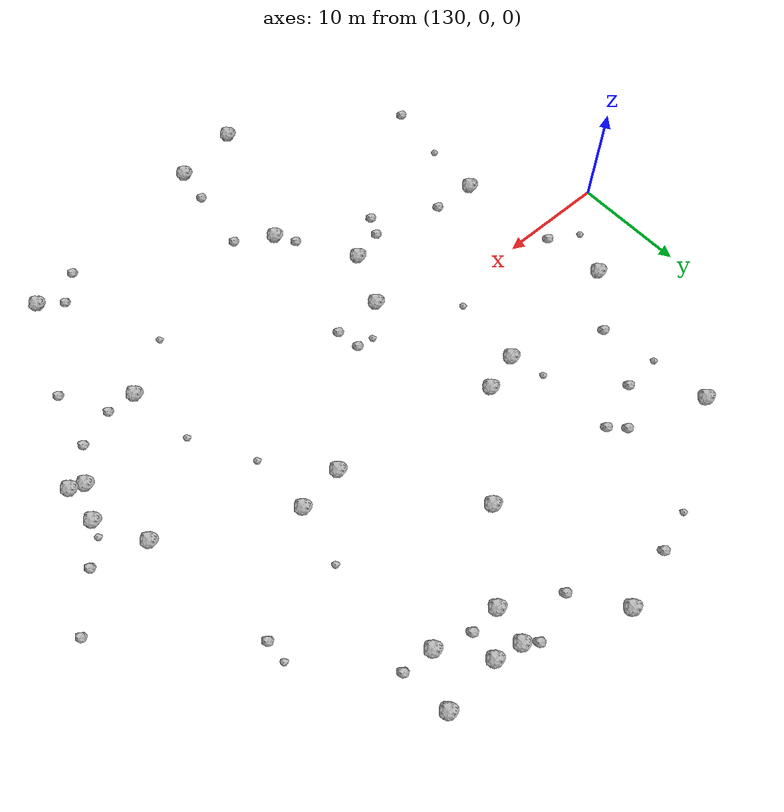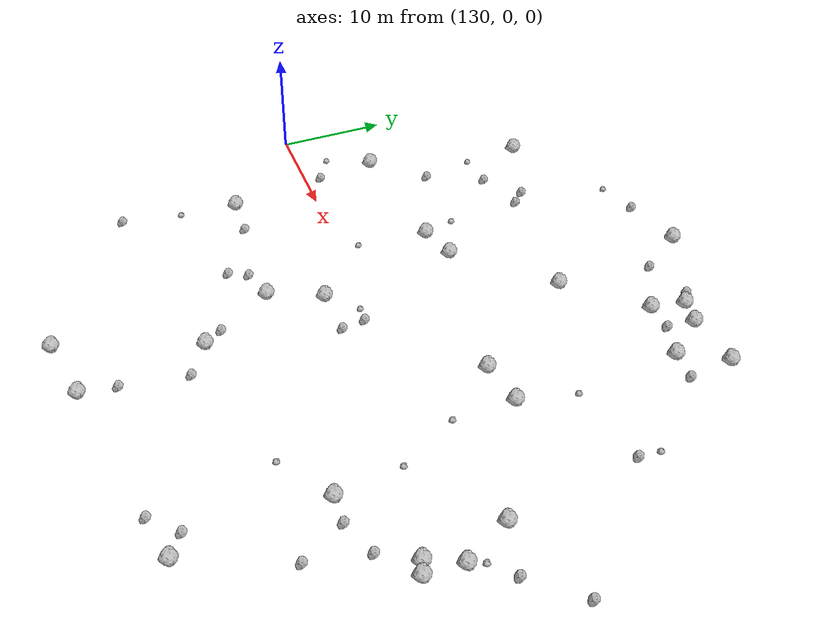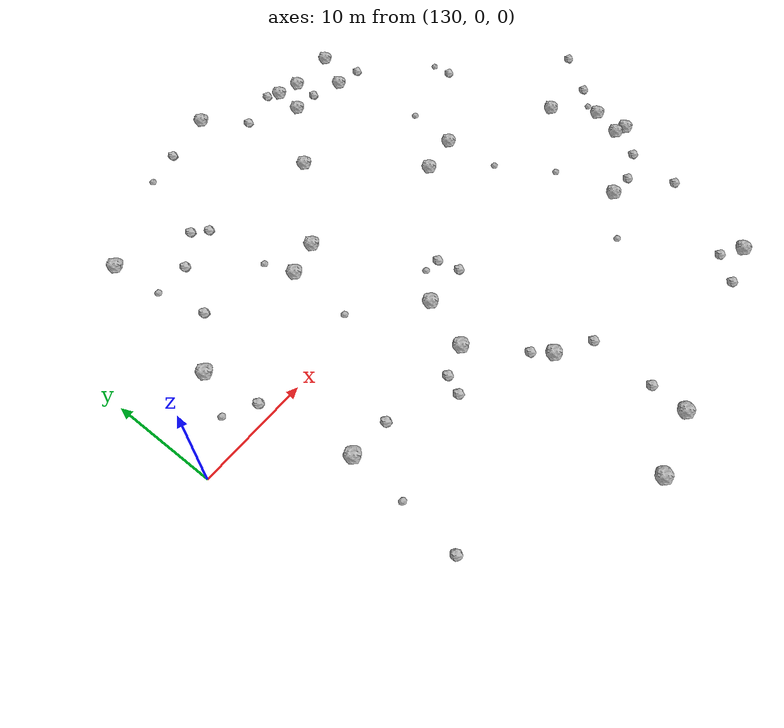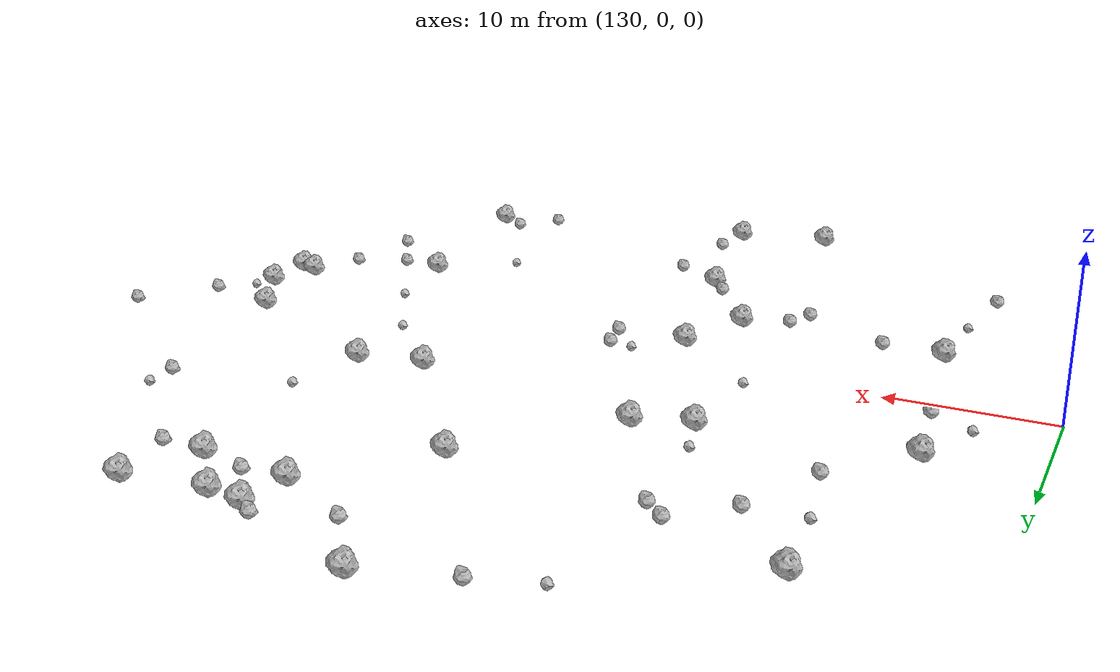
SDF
<sdf version="1.6">
 <world name="default">
  <include><uri>model://sun</uri></include>
  <model name="rock1_4_2">
   <include><uri>model://rock1</uri><pose>155.32642338487412 -14.985905595586068 0.5 0 0 0</pose></include>
  </model>
  <model name="rock1_4_3">
   <include><uri>model://rock1</uri><pose>148.43048004704022 8.142680772115753 0.5 0 0 0</pose></include>
  </model>
  <model name="rock1_4_4">
   <include><uri>model://rock1</uri><pose>174.41137348748273 -9.813971557914137 0.5 0 0 0</pose></include>
  </model>
  <model name="rock1_4_5">
   <include><uri>model://rock1</uri><pose>167.6936930826681 25.70259057506116 0.5 0 0 0</pose></include>
  </model>
  <model name="rock1_4_6">
   <include><uri>model://rock1</uri><pose>157.25882866581847 29.660295545142027 0.5 0 0 0</pose></include>
  </model>
  <model name="rock1_4_7">
   <include><uri>model://rock1</uri><pose>157.09492107012724 -26.23913666106335 0.5 0 0 0</pose></include>
  </model>
  <model name="rock1_4_8">
   <include><uri>model://rock1</uri><pose>182.09247975957743 -5.667109518617757 0.5 0 0 0</pose></include>
  </model>
  <model name="rock1_4_9">
   <include><uri>model://rock1</uri><pose>170.5751188742484 22.181711435049657 0.5 0 0 0</pose></include>
  </model>
  <model name="rock1_4_10">
   <include><uri>model://rock1</uri><pose>153.29879987793166 -3.532626697540607 0.5 0 0 0</pose></include>
  </model>
  <model name="rock1_4_11">
   <include><uri>model://rock1</uri><pose>138.09990534354955 -7.605581980136023 0.5 0 0 0</pose></include>
  </model>
  <model name="rock1_4_12">
   <include><uri>model://rock1</uri><pose>151.20281570235719 -8.33553795806483 0.5 0 0 0</pose></include>
  </model>
  <model name="rock1_4_13">
   <include><uri>model://rock1</uri><pose>159.14774900582822 16.8196643593245 0.5 0 0 0</pose></include>
  </model>
  <model name="rock1_4_14">
   <include><uri>model://rock1</uri><pose>136.33774671656636 6.905454327284268 0.5 0 0 0</pose></include>
  </model>
  <model name="rock1_4_15">
   <include><uri>model://rock1</uri><pose>172.80354352990292 26.19439223258982 0.5 0 0 0</pose></include>
  </model>
  <model name="rock1_4_16">
   <include><uri>model://rock1</uri><pose>175.5202774069259 -22.796520671471107 0.5 0 0 0</pose></include>
  </model>
  <model name="rock1_4_17">
   <include><uri>model://rock1</uri><pose>151.05588815198058 -27.42869511999502 0.5 0 0 0</pose></include>
  </model>
  <model name="rock1_4_18">
   <include><uri>model://rock1</uri><pose>139.15286511766305 21.53838985062613 0.5 0 0 0</pose></include>
  </model>
  <model name="rock1_4_19">
   <include><uri>model://rock1</uri><pose>183.4525325858993 -2.692984955730818 0.5 0 0 0</pose></include>
  </model>
  <model name="rock1_4_20">
   <include><uri>model://rock1</uri><pose>183.2926081562555 -6.127883378546244 0.5 0 0 0</pose></include>
  </model>
  <model name="rock1_4_21">
   <include><uri>model://rock1</uri><pose>170.47979132486967 7.230650137411558 0.5 0 0 0</pose></include>
  </model>
  <model name="rock1_4_22">
   <include><uri>model://rock1</uri><pose>164.82760681449994 23.023108417919865 0.5 0 0 0</pose></include>
  </model>
  <model name="rock1_4_23">
   <include><uri>model://rock1</uri><pose>151.83107475584404 9.139827150158936 0.5 0 0 0</pose></include>
  </model>
  <model name="rock1_4_24">
   <include><uri>model://rock1</uri><pose>165.37099120303984 26.15099761814856 0.5 0 0 0</pose></include>
  </model>
  <model name="rock1_4_25">
   <include><uri>model://rock1</uri><pose>181.1286981710711 1.5914871154440782 0.5 0 0 0</pose></include>
  </model>
  <model name="rock1_4_26">
   <include><uri>model://rock1</uri><pose>166.31162863887036 6.561978370396027 0.5 0 0 0</pose></include>
  </model>
  <model name="rock2_4_0">
   <include><uri>model://rock2</uri><pose>158.4177362395543 -16.979785141065705 0.3 0 0 0</pose></include>
  </model>
  <model name="rock2_4_1">
   <include><uri>model://rock2</uri><pose>151.9192759909845 28.21532134844005 0.3 0 0 0</pose></include>
  </model>
  <model name="rock2_4_2">
   <include><uri>model://rock2</uri><pose>189.36509194353184 4.478765258296356 0.3 0 0 0</pose></include>
  </model>
  <model name="rock2_4_3">
   <include><uri>model://rock2</uri><pose>185.80514180463828 0.4128718878902262 0.3 0 0 0</pose></include>
  </model>
  <model name="rock2_4_4">
   <include><uri>model://rock2</uri><pose>173.55710740539521 -21.41219458345713 0.3 0 0 0</pose></include>
  </model>
  <model name="rock2_4_5">
   <include><uri>model://rock2</uri><pose>171.31356826195744 -23.64047173035327 0.3 0 0 0</pose></include>
  </model>
  <model name="rock2_4_6">
   <include><uri>model://rock2</uri><pose>140.43689490670317 11.427270622832133 0.3 0 0 0</pose></include>
  </model>
  <model name="rock2_4_7">
   <include><uri>model://rock2</uri><pose>157.68320560743598 -3.385905842796852 0.3 0 0 0</pose></include>
  </model>
  <model name="rock2_4_8">
   <include><uri>model://rock2</uri><pose>136.93458391067114 1.4214938746756935 0.3 0 0 0</pose></include>
  </model>
  <model name="rock2_4_9">
   <include><uri>model://rock2</uri><pose>179.2122354826073 13.734304194138794 0.3 0 0 0</pose></include>
  </model>
  <model name="rock2_4_10">
   <include><uri>model://rock2</uri><pose>147.25119785179947 18.01125983093474 0.3 0 0 0</pose></include>
  </model>
  <model name="rock2_4_11">
   <include><uri>model://rock2</uri><pose>141.87554996541314 -7.778806198044332 0.3 0 0 0</pose></include>
  </model>
  <model name="rock2_4_12">
   <include><uri>model://rock2</uri><pose>164.24466473775493 26.96464248784303 0.3 0 0 0</pose></include>
  </model>
  <model name="rock2_4_13">
   <include><uri>model://rock2</uri><pose>176.96368106527552 -9.929930015173472 0.3 0 0 0</pose></include>
  </model>
  <model name="rock2_4_14">
   <include><uri>model://rock2</uri><pose>146.0332607769089 19.21649271590789 0.3 0 0 0</pose></include>
  </model>
  <model name="rock2_4_15">
   <include><uri>model://rock2</uri><pose>148.21623972715454 -9.162690901267847 0.3 0 0 0</pose></include>
  </model>
  <model name="rock2_4_16">
   <include><uri>model://rock2</uri><pose>142.91767781336196 16.54321286254261 0.3 0 0 0</pose></include>
  </model>
  <model name="rock2_4_17">
   <include><uri>model://rock2</uri><pose>173.29924794033707 22.007130064671685 0.3 0 0 0</pose></include>
  </model>
  <model name="rock2_4_18">
   <include><uri>model://rock2</uri><pose>179.221004346736 -13.89887790310247 0.3 0 0 0</pose></include>
  </model>
  <model name="rock2_4_19">
   <include><uri>model://rock2</uri><pose>160.0460478998638 25.601885035211765 0.3 0 0 0</pose></include>
  </model>
  <model name="rock2_4_20">
   <include><uri>model://rock2</uri><pose>147.36023823995612 -10.877435636289956 0.3 0 0 0</pose></include>
  </model>
  <model name="rock2_4_21">
   <include><uri>model://rock2</uri><pose>154.2202838210295 -13.32706722702008 0.3 0 0 0</pose></include>
  </model>
  <model name="rock2_4_22">
   <include><uri>model://rock2</uri><pose>167.42652628850038 23.165560257124227 0.3 0 0 0</pose></include>
  </model>
  <model name="rock2_4_23">
   <include><uri>model://rock2</uri><pose>157.5463040469115 -22.959322913903666 0.3 0 0 0</pose></include>
  </model>
  <model name="rock2_4_24">
   <include><uri>model://rock2</uri><pose>180.26192142038235 -8.718427976948274 0.3 0 0 0</pose></include>
  </model>
  <model name="rock2_4_25">
   <include><uri>model://rock2</uri><pose>136.74628043943463 -18.43089794790693 0.3 0 0 0</pose></include>
  </model>
  <model name="rock2_4_26">
   <include><uri>model://rock2</uri><pose>157.3604673595905 -1.2284782078326053 0.3 0 0 0</pose></include>
  </model>
  <model name="rock3_4_0">
   <include><uri>model://rock3</uri><pose>171.553406163261 12.440583926753753 0.2 0 0 0</pose></include>
  </model>
  <model name="rock3_4_1">
   <include><uri>model://rock3</uri><pose>147.71445871144138 1.6172647518599703 0.2 0 0 0</pose></include>
  </model>
  <model name="rock3_4_2">
   <include><uri>model://rock3</uri><pose>169.59929664137644 -12.94343857744656 0.2 0 0 0</pose></include>
  </model>
  <model name="rock3_4_3">
   <include><uri>model://rock3</uri><pose>183.8605600094995 -1.3389808808888652 0.2 0 0 0</pose></include>
  </model>
  <model name="rock3_4_4">
   <include><uri>model://rock3</uri><pose>134.32607215329438 2.9095907191665376 0.2 0 0 0</pose></include>
  </model>
  <model name="rock3_4_5">
   <include><uri>model://rock3</uri><pose>170.52259426214368 1.5824789526768583 0.2 0 0 0</pose></include>
  </model>
  <model name="rock3_4_6">
   <include><uri>model://rock3</uri><pose>173.50301547895054 -3.787103171199991 0.2 0 0 0</pose></include>
  </model>
  <model name="rock3_4_7">
   <include><uri>model://rock3</uri><pose>179.25900280645374 15.690842007832096 0.2 0 0 0</pose></include>
  </model>
  <model name="rock3_4_8">
   <include><uri>model://rock3</uri><pose>147.54058963541772 11.107896329667987 0.2 0 0 0</pose></include>
  </model>
  <model name="rock3_4_9">
   <include><uri>model://rock3</uri><pose>155.82472854328753 -1.0748704547314176 0.2 0 0 0</pose></include>
  </model>
  <model name="rock3_4_10">
   <include><uri>model://rock3</uri><pose>137.54840422424192 -12.898050036413284 0.2 0 0 0</pose></include>
  </model>
  <model name="rock3_4_11">
   <include><uri>model://rock3</uri><pose>139.48737615510115 16.267022328763183 0.2 0 0 0</pose></include>
  </model>
  <model name="rock3_4_12">
   <include><uri>model://rock3</uri><pose>148.285625799322 27.057599678260758 0.2 0 0 0</pose></include>
  </model>
 </world>
</sdf>
